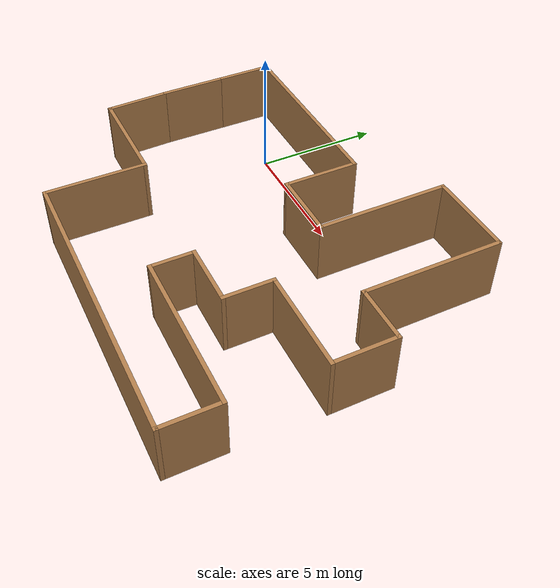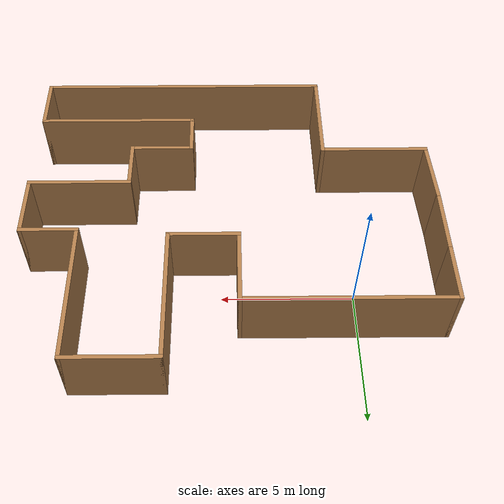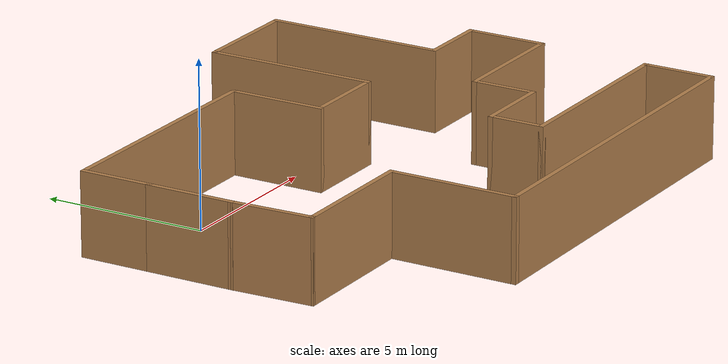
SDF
<?xml version='1.0'?>
<sdf version='1.7'>
  <model name='gaitron_world'>
    <pose>4.5535 -2.745 0 0 -0 0</pose>
    <link name='Wall_0'>
      <collision name='Wall_0_Collision'>
        <geometry>
          <box>
            <size>2.75 0.15 2.5</size>
          </box>
        </geometry>
        <pose>0 0 1.25 0 -0 0</pose>
      </collision>
      <visual name='Wall_0_Visual'>
        <pose>0 0 1.25 0 -0 0</pose>
        <geometry>
          <box>
            <size>2.75 0.15 2.5</size>
          </box>
        </geometry>
        <material>
          <script>
            <uri>file://media/materials/scripts/gazebo.material</uri>
            <name>Gazebo/Wood</name>
          </script>
          <ambient>1 1 1 1</ambient>
        </material>
        <meta>
          <layer>0</layer>
        </meta>
      </visual>
      <pose>-7.8235 0.975 0 0 -0 1.5708</pose>
    </link>
    <link name='Wall_1'>
      <collision name='Wall_1_Collision'>
        <geometry>
          <box>
            <size>2.25 0.15 2.5</size>
          </box>
        </geometry>
        <pose>0 0 1.25 0 -0 0</pose>
      </collision>
      <visual name='Wall_1_Visual'>
        <pose>0 0 1.25 0 -0 0</pose>
        <geometry>
          <box>
            <size>2.25 0.15 2.5</size>
          </box>
        </geometry>
        <material>
          <script>
            <uri>file://media/materials/scripts/gazebo.material</uri>
            <name>Gazebo/Wood</name>
          </script>
          <ambient>1 1 1 1</ambient>
        </material>
        <meta>
          <layer>0</layer>
        </meta>
      </visual>
      <pose>-7.8235 3.325 0 0 -0 1.5708</pose>
    </link>
    <link name='Wall_10'>
      <collision name='Wall_10_Collision'>
        <geometry>
          <box>
            <size>4 0.15 2.5</size>
          </box>
        </geometry>
        <pose>0 0 1.25 0 -0 0</pose>
      </collision>
      <visual name='Wall_10_Visual'>
        <pose>0 0 1.25 0 -0 0</pose>
        <geometry>
          <box>
            <size>4 0.15 2.5</size>
          </box>
        </geometry>
        <material>
          <script>
            <uri>file://media/materials/scripts/gazebo.material</uri>
            <name>Gazebo/Wood</name>
          </script>
          <ambient>1 1 1 1</ambient>
        </material>
        <meta>
          <layer>0</layer>
        </meta>
      </visual>
      <pose>5.9015 -1.075 0 0 -0 3.14159</pose>
    </link>
    <link name='Wall_11'>
      <collision name='Wall_11_Collision'>
        <geometry>
          <box>
            <size>2 0.15 2.5</size>
          </box>
        </geometry>
        <pose>0 0 1.25 0 -0 0</pose>
      </collision>
      <visual name='Wall_11_Visual'>
        <pose>0 0 1.25 0 -0 0</pose>
        <geometry>
          <box>
            <size>2 0.15 2.5</size>
          </box>
        </geometry>
        <material>
          <script>
            <uri>file://media/materials/scripts/gazebo.material</uri>
            <name>Gazebo/Wood</name>
          </script>
          <ambient>1 1 1 1</ambient>
        </material>
        <meta>
          <layer>0</layer>
        </meta>
      </visual>
      <pose>3.9765 -2 0 0 -0 -1.5708</pose>
    </link>
    <link name='Wall_12'>
      <collision name='Wall_12_Collision'>
        <geometry>
          <box>
            <size>2.5 0.15 2.5</size>
          </box>
        </geometry>
        <pose>0 0 1.25 0 -0 0</pose>
      </collision>
      <visual name='Wall_12_Visual'>
        <pose>0 0 1.25 0 -0 0</pose>
        <geometry>
          <box>
            <size>2.5 0.15 2.5</size>
          </box>
        </geometry>
        <material>
          <script>
            <uri>file://media/materials/scripts/gazebo.material</uri>
            <name>Gazebo/Wood</name>
          </script>
          <ambient>1 1 1 1</ambient>
        </material>
        <meta>
          <layer>0</layer>
        </meta>
      </visual>
      <pose>2.8015 -2.925 0 0 -0 3.14159</pose>
    </link>
    <link name='Wall_13'>
      <collision name='Wall_13_Collision'>
        <geometry>
          <box>
            <size>1.75 0.15 2.5</size>
          </box>
        </geometry>
        <pose>0 0 1.25 0 -0 0</pose>
      </collision>
      <visual name='Wall_13_Visual'>
        <pose>0 0 1.25 0 -0 0</pose>
        <geometry>
          <box>
            <size>1.75 0.15 2.5</size>
          </box>
        </geometry>
        <material>
          <script>
            <uri>file://media/materials/scripts/gazebo.material</uri>
            <name>Gazebo/Wood</name>
          </script>
          <ambient>1 1 1 1</ambient>
        </material>
        <meta>
          <layer>0</layer>
        </meta>
      </visual>
      <pose>1.6265 -3.725 0 0 -0 -1.5708</pose>
    </link>
    <link name='Wall_14'>
      <collision name='Wall_14_Collision'>
        <geometry>
          <box>
            <size>6.25 0.15 2.5</size>
          </box>
        </geometry>
        <pose>0 0 1.25 0 -0 0</pose>
      </collision>
      <visual name='Wall_14_Visual'>
        <pose>0 0 1.25 0 -0 0</pose>
        <geometry>
          <box>
            <size>6.25 0.15 2.5</size>
          </box>
        </geometry>
        <material>
          <script>
            <uri>file://media/materials/scripts/gazebo.material</uri>
            <name>Gazebo/Wood</name>
          </script>
          <ambient>1 1 1 1</ambient>
        </material>
        <meta>
          <layer>0</layer>
        </meta>
      </visual>
      <pose>4.6765 -4.525 0 0 -0 0</pose>
    </link>
    <link name='Wall_15'>
      <collision name='Wall_15_Collision'>
        <geometry>
          <box>
            <size>2.25 0.15 2.5</size>
          </box>
        </geometry>
        <pose>0 0 1.25 0 -0 0</pose>
      </collision>
      <visual name='Wall_15_Visual'>
        <pose>0 0 1.25 0 -0 0</pose>
        <geometry>
          <box>
            <size>2.25 0.15 2.5</size>
          </box>
        </geometry>
        <material>
          <script>
            <uri>file://media/materials/scripts/gazebo.material</uri>
            <name>Gazebo/Wood</name>
          </script>
          <ambient>1 1 1 1</ambient>
        </material>
        <meta>
          <layer>0</layer>
        </meta>
      </visual>
      <pose>7.7265 -5.575 0 0 -0 -1.5708</pose>
    </link>
    <link name='Wall_18'>
      <collision name='Wall_18_Collision'>
        <geometry>
          <box>
            <size>11.5 0.15 2.5</size>
          </box>
        </geometry>
        <pose>0 0 1.25 0 -0 0</pose>
      </collision>
      <visual name='Wall_18_Visual'>
        <pose>0 0 1.25 0 -0 0</pose>
        <geometry>
          <box>
            <size>11.5 0.15 2.5</size>
          </box>
        </geometry>
        <material>
          <script>
            <uri>file://media/materials/scripts/gazebo.material</uri>
            <name>Gazebo/Wood</name>
          </script>
          <ambient>1 1 1 1</ambient>
        </material>
        <meta>
          <layer>0</layer>
        </meta>
      </visual>
      <pose>2.0515 -6.625 0 0 -0 3.14159</pose>
    </link>
    <link name='Wall_19'>
      <collision name='Wall_19_Collision'>
        <geometry>
          <box>
            <size>4 0.15 2.5</size>
          </box>
        </geometry>
        <pose>0 0 1.25 0 -0 0</pose>
      </collision>
      <visual name='Wall_19_Visual'>
        <pose>0 0 1.25 0 -0 0</pose>
        <geometry>
          <box>
            <size>4 0.15 2.5</size>
          </box>
        </geometry>
        <material>
          <script>
            <uri>file://media/materials/scripts/gazebo.material</uri>
            <name>Gazebo/Wood</name>
          </script>
          <ambient>1 1 1 1</ambient>
        </material>
        <meta>
          <layer>0</layer>
        </meta>
      </visual>
      <pose>-3.6235 -4.7 0 0 -0 1.5708</pose>
    </link>
    <link name='Wall_2'>
      <collision name='Wall_2_Collision'>
        <geometry>
          <box>
            <size>7.75 0.15 2.5</size>
          </box>
        </geometry>
        <pose>0 0 1.25 0 -0 0</pose>
      </collision>
      <visual name='Wall_2_Visual'>
        <pose>0 0 1.25 0 -0 0</pose>
        <geometry>
          <box>
            <size>7.75 0.15 2.5</size>
          </box>
        </geometry>
        <material>
          <script>
            <uri>file://media/materials/scripts/gazebo.material</uri>
            <name>Gazebo/Wood</name>
          </script>
          <ambient>1 1 1 1</ambient>
        </material>
        <meta>
          <layer>0</layer>
        </meta>
      </visual>
      <pose>-4.0235 4.375 0 0 -0 0</pose>
    </link>
    <link name='Wall_20'>
      <collision name='Wall_20_Collision'>
        <geometry>
          <box>
            <size>4.25 0.15 2.5</size>
          </box>
        </geometry>
        <pose>0 0 1.25 0 -0 0</pose>
      </collision>
      <visual name='Wall_20_Visual'>
        <pose>0 0 1.25 0 -0 0</pose>
        <geometry>
          <box>
            <size>4.25 0.15 2.5</size>
          </box>
        </geometry>
        <material>
          <script>
            <uri>file://media/materials/scripts/gazebo.material</uri>
            <name>Gazebo/Wood</name>
          </script>
          <ambient>1 1 1 1</ambient>
        </material>
        <meta>
          <layer>0</layer>
        </meta>
      </visual>
      <pose>-5.6735 -2.775 0 0 -0 3.14159</pose>
    </link>
    <link name='Wall_21'>
      <collision name='Wall_21_Collision'>
        <geometry>
          <box>
            <size>2.60204 0.15 2.5</size>
          </box>
        </geometry>
        <pose>0 0 1.25 0 -0 0</pose>
      </collision>
      <visual name='Wall_21_Visual'>
        <pose>0 0 1.25 0 -0 0</pose>
        <geometry>
          <box>
            <size>2.60204 0.15 2.5</size>
          </box>
        </geometry>
        <material>
          <script>
            <uri>file://media/materials/scripts/gazebo.material</uri>
            <name>Gazebo/Wood</name>
          </script>
          <ambient>1 1 1 1</ambient>
        </material>
        <meta>
          <layer>0</layer>
        </meta>
      </visual>
      <pose>-7.7735 -1.55 0 0 -0 1.61159</pose>
    </link>
    <link name='Wall_3'>
      <collision name='Wall_3_Collision'>
        <geometry>
          <box>
            <size>3 0.15 2.5</size>
          </box>
        </geometry>
        <pose>0 0 1.25 0 -0 0</pose>
      </collision>
      <visual name='Wall_3_Visual'>
        <pose>0 0 1.25 0 -0 0</pose>
        <geometry>
          <box>
            <size>3 0.15 2.5</size>
          </box>
        </geometry>
        <material>
          <script>
            <uri>file://media/materials/scripts/gazebo.material</uri>
            <name>Gazebo/Wood</name>
          </script>
          <ambient>1 1 1 1</ambient>
        </material>
        <meta>
          <layer>0</layer>
        </meta>
      </visual>
      <pose>-0.223502 2.95 0 0 -0 -1.5708</pose>
    </link>
    <link name='Wall_4'>
      <collision name='Wall_4_Collision'>
        <geometry>
          <box>
            <size>2.75 0.15 2.5</size>
          </box>
        </geometry>
        <pose>0 0 1.25 0 -0 0</pose>
      </collision>
      <visual name='Wall_4_Visual'>
        <pose>0 0 1.25 0 -0 0</pose>
        <geometry>
          <box>
            <size>2.75 0.15 2.5</size>
          </box>
        </geometry>
        <material>
          <script>
            <uri>file://media/materials/scripts/gazebo.material</uri>
            <name>Gazebo/Wood</name>
          </script>
          <ambient>1 1 1 1</ambient>
        </material>
        <meta>
          <layer>0</layer>
        </meta>
      </visual>
      <pose>1.0765 1.525 0 0 -0 0</pose>
    </link>
    <link name='Wall_5'>
      <collision name='Wall_5_Collision'>
        <geometry>
          <box>
            <size>5.25 0.15 2.5</size>
          </box>
        </geometry>
        <pose>0 0 1.25 0 -0 0</pose>
      </collision>
      <visual name='Wall_5_Visual'>
        <pose>0 0 1.25 0 -0 0</pose>
        <geometry>
          <box>
            <size>5.25 0.15 2.5</size>
          </box>
        </geometry>
        <material>
          <script>
            <uri>file://media/materials/scripts/gazebo.material</uri>
            <name>Gazebo/Wood</name>
          </script>
          <ambient>1 1 1 1</ambient>
        </material>
        <meta>
          <layer>0</layer>
        </meta>
      </visual>
      <pose>2.3765 4.075 0 0 -0 1.5708</pose>
    </link>
    <link name='Wall_6'>
      <collision name='Wall_6_Collision'>
        <geometry>
          <box>
            <size>3.5 0.15 2.5</size>
          </box>
        </geometry>
        <pose>0 0 1.25 0 -0 0</pose>
      </collision>
      <visual name='Wall_6_Visual'>
        <pose>0 0 1.25 0 -0 0</pose>
        <geometry>
          <box>
            <size>3.5 0.15 2.5</size>
          </box>
        </geometry>
        <material>
          <script>
            <uri>file://media/materials/scripts/gazebo.material</uri>
            <name>Gazebo/Wood</name>
          </script>
          <ambient>1 1 1 1</ambient>
        </material>
        <meta>
          <layer>0</layer>
        </meta>
      </visual>
      <pose>4.0515 6.625 0 0 -0 0</pose>
    </link>
    <link name='Wall_7'>
      <collision name='Wall_7_Collision'>
        <geometry>
          <box>
            <size>5.5 0.15 2.5</size>
          </box>
        </geometry>
        <pose>0 0 1.25 0 -0 0</pose>
      </collision>
      <visual name='Wall_7_Visual'>
        <pose>0 0 1.25 0 -0 0</pose>
        <geometry>
          <box>
            <size>5.5 0.15 2.5</size>
          </box>
        </geometry>
        <material>
          <script>
            <uri>file://media/materials/scripts/gazebo.material</uri>
            <name>Gazebo/Wood</name>
          </script>
          <ambient>1 1 1 1</ambient>
        </material>
        <meta>
          <layer>0</layer>
        </meta>
      </visual>
      <pose>5.7265 3.95 0 0 -0 -1.5708</pose>
    </link>
    <link name='Wall_8'>
      <collision name='Wall_8_Collision'>
        <geometry>
          <box>
            <size>2.25 0.15 2.5</size>
          </box>
        </geometry>
        <pose>0 0 1.25 0 -0 0</pose>
      </collision>
      <visual name='Wall_8_Visual'>
        <pose>0 0 1.25 0 -0 0</pose>
        <geometry>
          <box>
            <size>2.25 0.15 2.5</size>
          </box>
        </geometry>
        <material>
          <script>
            <uri>file://media/materials/scripts/gazebo.material</uri>
            <name>Gazebo/Wood</name>
          </script>
          <ambient>1 1 1 1</ambient>
        </material>
        <meta>
          <layer>0</layer>
        </meta>
      </visual>
      <pose>6.7765 1.275 0 0 -0 0</pose>
    </link>
    <link name='Wall_9'>
      <collision name='Wall_9_Collision'>
        <geometry>
          <box>
            <size>2.5 0.15 2.5</size>
          </box>
        </geometry>
        <pose>0 0 1.25 0 -0 0</pose>
      </collision>
      <visual name='Wall_9_Visual'>
        <pose>0 0 1.25 0 -0 0</pose>
        <geometry>
          <box>
            <size>2.5 0.15 2.5</size>
          </box>
        </geometry>
        <material>
          <script>
            <uri>file://media/materials/scripts/gazebo.material</uri>
            <name>Gazebo/Wood</name>
          </script>
          <ambient>1 1 1 1</ambient>
        </material>
        <meta>
          <layer>0</layer>
        </meta>
      </visual>
      <pose>7.8265 0.1 0 0 -0 -1.5708</pose>
    </link>
    <static>1</static>
  </model>
</sdf>
